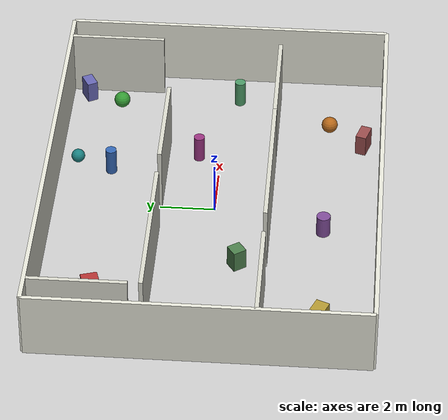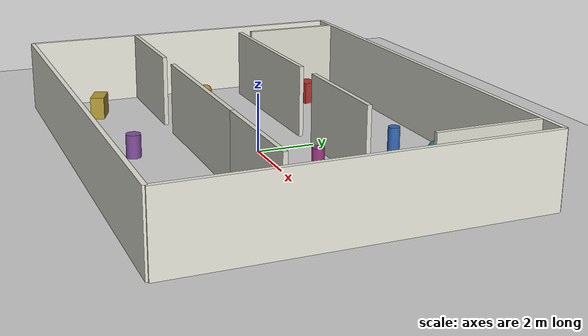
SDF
<sdf version="1.6">
 <world name="hospital_ward">
  <physics name="default_physics" type="ode">
   <max_step_size>0.001</max_step_size>
   <real_time_factor>1.0</real_time_factor>
   <real_time_update_rate>1000</real_time_update_rate>
  </physics>
  <light type="directional" name="sun">
   <pose>0 0 10 0 0 0</pose>
   <diffuse>0.8 0.8 0.8 1</diffuse>
   <specular>0.2 0.2 0.2 1</specular>
   <attenuation>
    <range>1000</range>
    <constant>0.9</constant>
    <linear>0.01</linear>
    <quadratic>0.001</quadratic>
   </attenuation>
   <direction>-0.5 0.1 -0.9</direction>
  </light>
  <model name="ground_plane">
   <static>true</static>
   <link name="link">
    <collision name="collision">
     <geometry><plane><normal>0 0 1</normal><size>100 100</size></plane></geometry>
     <surface><friction><ode><mu>1.0</mu><mu2>1.0</mu2></ode></friction></surface>
    </collision>
    <visual name="visual">
     <geometry><plane><normal>0 0 1</normal><size>100 100</size></plane></geometry>
     <material><ambient>0.8 0.8 0.8 1</ambient><diffuse>0.8 0.8 0.8 1</diffuse></material>
    </visual>
   </link>
  </model>
  <model name="wall_outer_north">
   <static>true</static>
   <pose>0 6 1.25 0 0 0</pose>
   <link name="link">
    <collision name="collision"><geometry><box><size>16 0.15 2.5</size></box></geometry></collision>
    <visual name="visual">
     <geometry><box><size>16 0.15 2.5</size></box></geometry>
     <material><ambient>0.9 0.9 0.85 1</ambient><diffuse>0.9 0.9 0.85 1</diffuse></material>
    </visual>
   </link>
  </model>
  <model name="wall_outer_south">
   <static>true</static>
   <pose>0 -6 1.25 0 0 0</pose>
   <link name="link">
    <collision name="collision"><geometry><box><size>16 0.15 2.5</size></box></geometry></collision>
    <visual name="visual">
     <geometry><box><size>16 0.15 2.5</size></box></geometry>
     <material><ambient>0.9 0.9 0.85 1</ambient><diffuse>0.9 0.9 0.85 1</diffuse></material>
    </visual>
   </link>
  </model>
  <model name="wall_outer_east">
   <static>true</static>
   <pose>8 0 1.25 0 0 1.5708</pose>
   <link name="link">
    <collision name="collision"><geometry><box><size>12 0.15 2.5</size></box></geometry></collision>
    <visual name="visual">
     <geometry><box><size>12 0.15 2.5</size></box></geometry>
     <material><ambient>0.9 0.9 0.85 1</ambient><diffuse>0.9 0.9 0.85 1</diffuse></material>
    </visual>
   </link>
  </model>
  <model name="wall_outer_west">
   <static>true</static>
   <pose>-8 0 1.25 0 0 1.5708</pose>
   <link name="link">
    <collision name="collision"><geometry><box><size>12 0.15 2.5</size></box></geometry></collision>
    <visual name="visual">
     <geometry><box><size>12 0.15 2.5</size></box></geometry>
     <material><ambient>0.9 0.9 0.85 1</ambient><diffuse>0.9 0.9 0.85 1</diffuse></material>
    </visual>
   </link>
  </model>
  <model name="wall_div_1a">
   <static>true</static>
   <pose>-4 2 1.25 0 0 0</pose>
   <link name="link">
    <collision name="collision"><geometry><box><size>6 0.15 2.5</size></box></geometry></collision>
    <visual name="visual">
     <geometry><box><size>6 0.15 2.5</size></box></geometry>
     <material><ambient>0.85 0.85 0.8 1</ambient><diffuse>0.85 0.85 0.8 1</diffuse></material>
    </visual>
   </link>
  </model>
  <model name="wall_div_1b">
   <static>true</static>
   <pose>2 2 1.25 0 0 0</pose>
   <link name="link">
    <collision name="collision"><geometry><box><size>4 0.15 2.5</size></box></geometry></collision>
    <visual name="visual">
     <geometry><box><size>4 0.15 2.5</size></box></geometry>
     <material><ambient>0.85 0.85 0.8 1</ambient><diffuse>0.85 0.85 0.8 1</diffuse></material>
    </visual>
   </link>
  </model>
  <model name="wall_div_2a">
   <static>true</static>
   <pose>-6 -2 1.25 0 0 0</pose>
   <link name="link">
    <collision name="collision"><geometry><box><size>4 0.15 2.5</size></box></geometry></collision>
    <visual name="visual">
     <geometry><box><size>4 0.15 2.5</size></box></geometry>
     <material><ambient>0.85 0.85 0.8 1</ambient><diffuse>0.85 0.85 0.8 1</diffuse></material>
    </visual>
   </link>
  </model>
  <model name="wall_div_2b">
   <static>true</static>
   <pose>0 -2 1.25 0 0 0</pose>
   <link name="link">
    <collision name="collision"><geometry><box><size>6 0.15 2.5</size></box></geometry></collision>
    <visual name="visual">
     <geometry><box><size>6 0.15 2.5</size></box></geometry>
     <material><ambient>0.85 0.85 0.8 1</ambient><diffuse>0.85 0.85 0.8 1</diffuse></material>
    </visual>
   </link>
  </model>
  <model name="wall_div_2c">
   <static>true</static>
   <pose>5 -2 1.25 0 0 0</pose>
   <link name="link">
    <collision name="collision"><geometry><box><size>4 0.15 2.5</size></box></geometry></collision>
    <visual name="visual">
     <geometry><box><size>4 0.15 2.5</size></box></geometry>
     <material><ambient>0.85 0.85 0.8 1</ambient><diffuse>0.85 0.85 0.8 1</diffuse></material>
    </visual>
   </link>
  </model>
  <model name="wall_room_1">
   <static>true</static>
   <pose>-7 4.2 1.25 0 0 1.5708</pose>
   <link name="link">
    <collision name="collision"><geometry><box><size>3.5 0.15 2.5</size></box></geometry></collision>
    <visual name="visual">
     <geometry><box><size>3.5 0.15 2.5</size></box></geometry>
     <material><ambient>0.85 0.85 0.8 1</ambient><diffuse>0.85 0.85 0.8 1</diffuse></material>
    </visual>
   </link>
  </model>
  <model name="wall_room_2">
   <static>true</static>
   <pose>7 4.2 1.25 0 0 1.5708</pose>
   <link name="link">
    <collision name="collision"><geometry><box><size>3.5 0.15 2.5</size></box></geometry></collision>
    <visual name="visual">
     <geometry><box><size>3.5 0.15 2.5</size></box></geometry>
     <material><ambient>0.85 0.85 0.8 1</ambient><diffuse>0.85 0.85 0.8 1</diffuse></material>
    </visual>
   </link>
  </model>
  <model name="obstacle_box_1">
   <static>true</static>
   <pose>-5 4 0.4 0 0 0.3</pose>
   <link name="link">
    <collision name="collision"><geometry><box><size>0.6 0.6 0.8</size></box></geometry></collision>
    <visual name="visual">
     <geometry><box><size>0.6 0.6 0.8</size></box></geometry>
     <material><ambient>0.7 0.2 0.2 1</ambient><diffuse>0.7 0.2 0.2 1</diffuse></material>
    </visual>
   </link>
  </model>
  <model name="obstacle_cyl_1">
   <static>true</static>
   <pose>2 4 0.5 0 0 0</pose>
   <link name="link">
    <collision name="collision">
     <geometry><cylinder><radius>0.2</radius><length>1.0</length></cylinder></geometry>
    </collision>
    <visual name="visual">
     <geometry><cylinder><radius>0.2</radius><length>1.0</length></cylinder></geometry>
     <material><ambient>0.2 0.4 0.7 1</ambient><diffuse>0.2 0.4 0.7 1</diffuse></material>
    </visual>
   </link>
  </model>
  <model name="obstacle_sphere_1">
   <static>true</static>
   <pose>6 4 0.3 0 0 0</pose>
   <link name="link">
    <collision name="collision"><geometry><sphere><radius>0.3</radius></sphere></geometry></collision>
    <visual name="visual">
     <geometry><sphere><radius>0.3</radius></sphere></geometry>
     <material><ambient>0.2 0.6 0.2 1</ambient><diffuse>0.2 0.6 0.2 1</diffuse></material>
    </visual>
   </link>
  </model>
  <model name="obstacle_box_2">
   <static>true</static>
   <pose>-6 -4 0.4 0 0 -0.4</pose>
   <link name="link">
    <collision name="collision"><geometry><box><size>0.9 0.5 0.8</size></box></geometry></collision>
    <visual name="visual">
     <geometry><box><size>0.9 0.5 0.8</size></box></geometry>
     <material><ambient>0.7 0.6 0.2 1</ambient><diffuse>0.7 0.6 0.2 1</diffuse></material>
    </visual>
   </link>
  </model>
  <model name="obstacle_cyl_2">
   <static>true</static>
   <pose>-1 -4 0.4 0 0 0</pose>
   <link name="link">
    <collision name="collision">
     <geometry><cylinder><radius>0.25</radius><length>0.8</length></cylinder></geometry>
    </collision>
    <visual name="visual">
     <geometry><cylinder><radius>0.25</radius><length>0.8</length></cylinder></geometry>
     <material><ambient>0.5 0.3 0.6 1</ambient><diffuse>0.5 0.3 0.6 1</diffuse></material>
    </visual>
   </link>
  </model>
  <model name="obstacle_sphere_2">
   <static>true</static>
   <pose>5 -4 0.3 0 0 0</pose>
   <link name="link">
    <collision name="collision"><geometry><sphere><radius>0.3</radius></sphere></geometry></collision>
    <visual name="visual">
     <geometry><sphere><radius>0.3</radius></sphere></geometry>
     <material><ambient>0.7 0.4 0.1 1</ambient><diffuse>0.7 0.4 0.1 1</diffuse></material>
    </visual>
   </link>
  </model>
  <model name="obstacle_box_3">
   <static>true</static>
   <pose>-3 -1 0.4 0 0 0.6</pose>
   <link name="link">
    <collision name="collision"><geometry><box><size>0.5 0.5 0.8</size></box></geometry></collision>
    <visual name="visual">
     <geometry><box><size>0.5 0.5 0.8</size></box></geometry>
     <material><ambient>0.3 0.5 0.3 1</ambient><diffuse>0.3 0.5 0.3 1</diffuse></material>
    </visual>
   </link>
  </model>
  <model name="obstacle_cyl_3">
   <static>true</static>
   <pose>3 0.8 0.5 0 0 0</pose>
   <link name="link">
    <collision name="collision">
     <geometry><cylinder><radius>0.2</radius><length>1.0</length></cylinder></geometry>
    </collision>
    <visual name="visual">
     <geometry><cylinder><radius>0.2</radius><length>1.0</length></cylinder></geometry>
     <material><ambient>0.6 0.2 0.5 1</ambient><diffuse>0.6 0.2 0.5 1</diffuse></material>
    </visual>
   </link>
  </model>
  <model name="obstacle_sphere_3">
   <static>true</static>
   <pose>2.5 5.3 0.25 0 0 0</pose>
   <link name="link">
    <collision name="collision"><geometry><sphere><radius>0.25</radius></sphere></geometry></collision>
    <visual name="visual">
     <geometry><sphere><radius>0.25</radius></sphere></geometry>
     <material><ambient>0.1 0.5 0.5 1</ambient><diffuse>0.1 0.5 0.5 1</diffuse></material>
    </visual>
   </link>
  </model>
  <model name="obstacle_box_4">
   <static>true</static>
   <pose>6.5 5.3 0.4 0 0 0.5</pose>
   <link name="link">
    <collision name="collision"><geometry><box><size>0.6 0.4 0.8</size></box></geometry></collision>
    <visual name="visual">
     <geometry><box><size>0.6 0.4 0.8</size></box></geometry>
     <material><ambient>0.4 0.4 0.7 1</ambient><diffuse>0.4 0.4 0.7 1</diffuse></material>
    </visual>
   </link>
  </model>
  <model name="obstacle_cyl_4">
   <static>true</static>
   <pose>-7 -5 0.45 0 0 0</pose>
   <link name="link">
    <collision name="collision">
     <geometry><cylinder><radius>0.15</radius><length>0.9</length></cylinder></geometry>
    </collision>
    <visual name="visual">
     <geometry><cylinder><radius>0.15</radius><length>0.9</length></cylinder></geometry>
     <material><ambient>0.6 0.6 0.2 1</ambient><diffuse>0.6 0.6 0.2 1</diffuse></material>
    </visual>
   </link>
  </model>
  <model name="obstacle_box_5">
   <static>true</static>
   <pose>4 -5.3 0.4 0 0 -0.3</pose>
   <link name="link">
    <collision name="collision"><geometry><box><size>0.7 0.4 0.8</size></box></geometry></collision>
    <visual name="visual">
     <geometry><box><size>0.7 0.4 0.8</size></box></geometry>
     <material><ambient>0.6 0.3 0.3 1</ambient><diffuse>0.6 0.3 0.3 1</diffuse></material>
    </visual>
   </link>
  </model>
  <model name="obstacle_sphere_4">
   <static>true</static>
   <pose>-7 0.5 0.25 0 0 0</pose>
   <link name="link">
    <collision name="collision"><geometry><sphere><radius>0.25</radius></sphere></geometry></collision>
    <visual name="visual">
     <geometry><sphere><radius>0.25</radius></sphere></geometry>
     <material><ambient>0.7 0.5 0.2 1</ambient><diffuse>0.7 0.5 0.2 1</diffuse></material>
    </visual>
   </link>
  </model>
  <model name="obstacle_cyl_5">
   <static>true</static>
   <pose>6.5 -0.5 0.5 0 0 0</pose>
   <link name="link">
    <collision name="collision">
     <geometry><cylinder><radius>0.2</radius><length>1.0</length></cylinder></geometry>
    </collision>
    <visual name="visual">
     <geometry><cylinder><radius>0.2</radius><length>1.0</length></cylinder></geometry>
     <material><ambient>0.3 0.6 0.4 1</ambient><diffuse>0.3 0.6 0.4 1</diffuse></material>
    </visual>
   </link>
  </model>
 </world>
</sdf>
